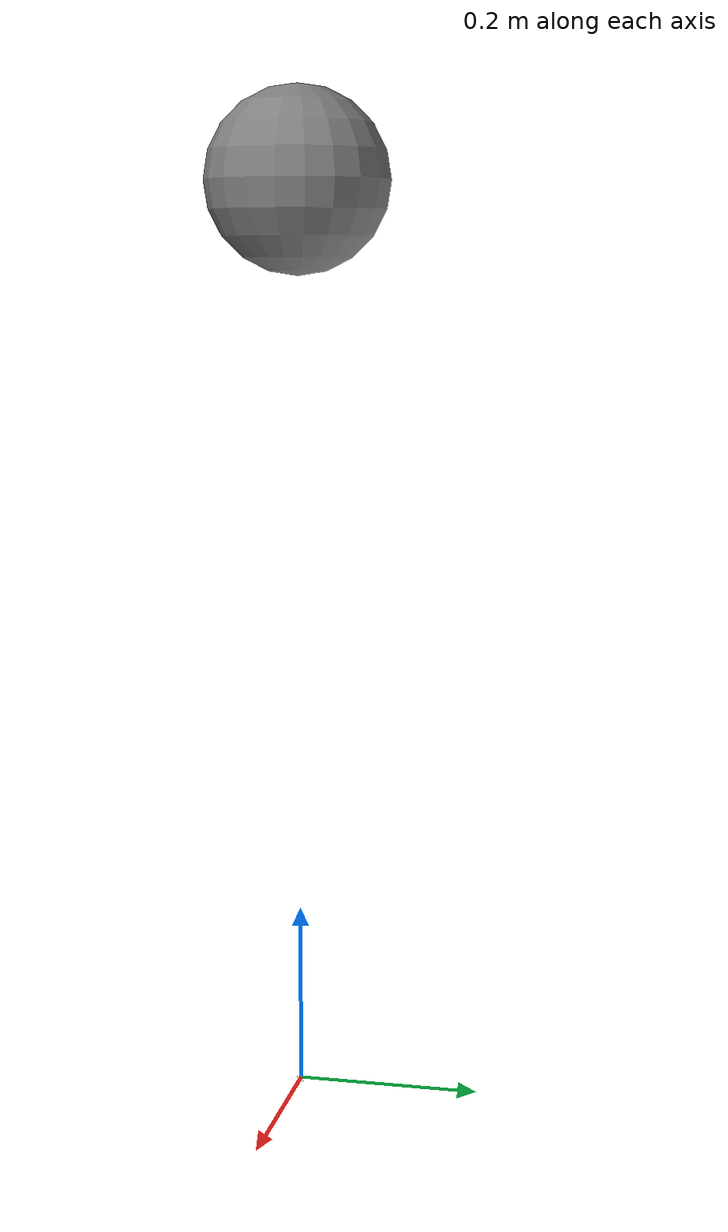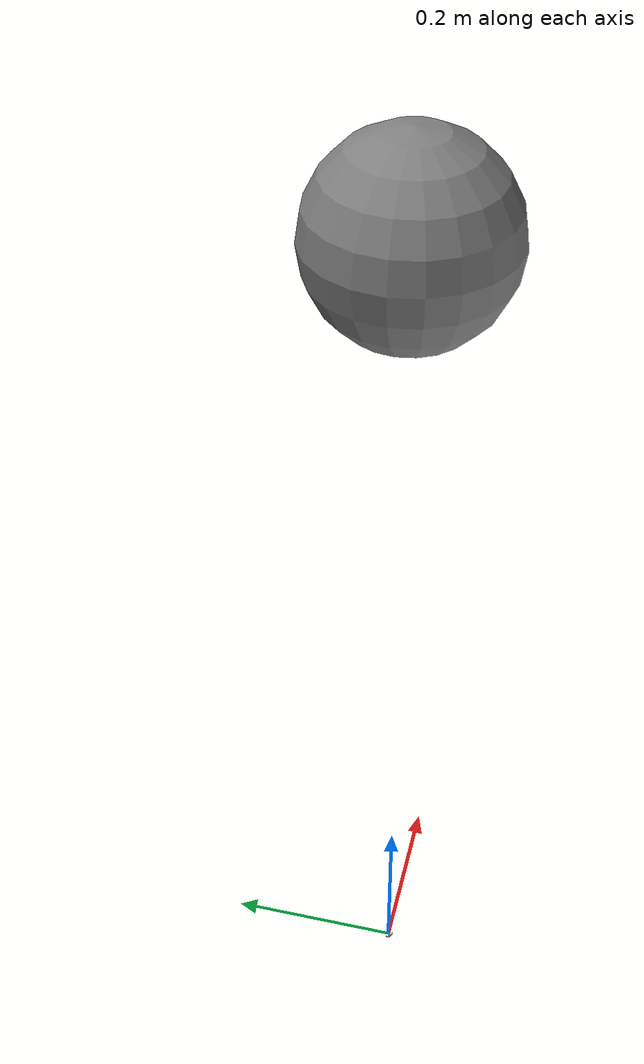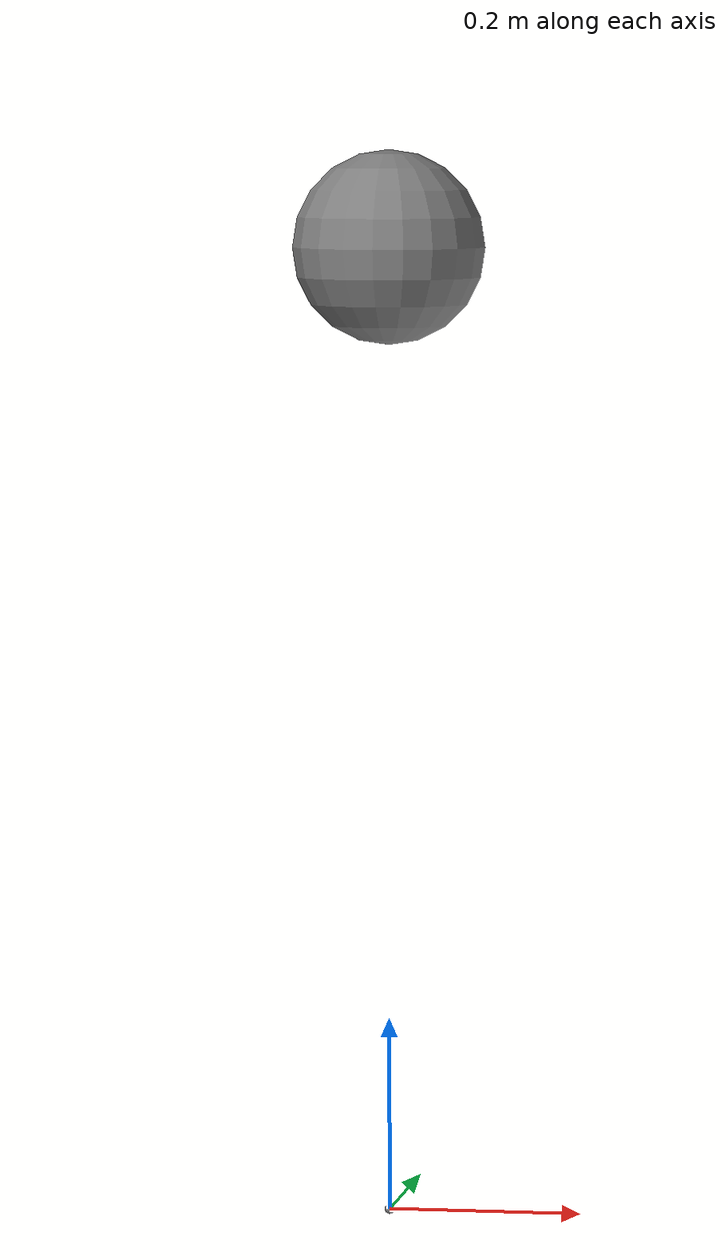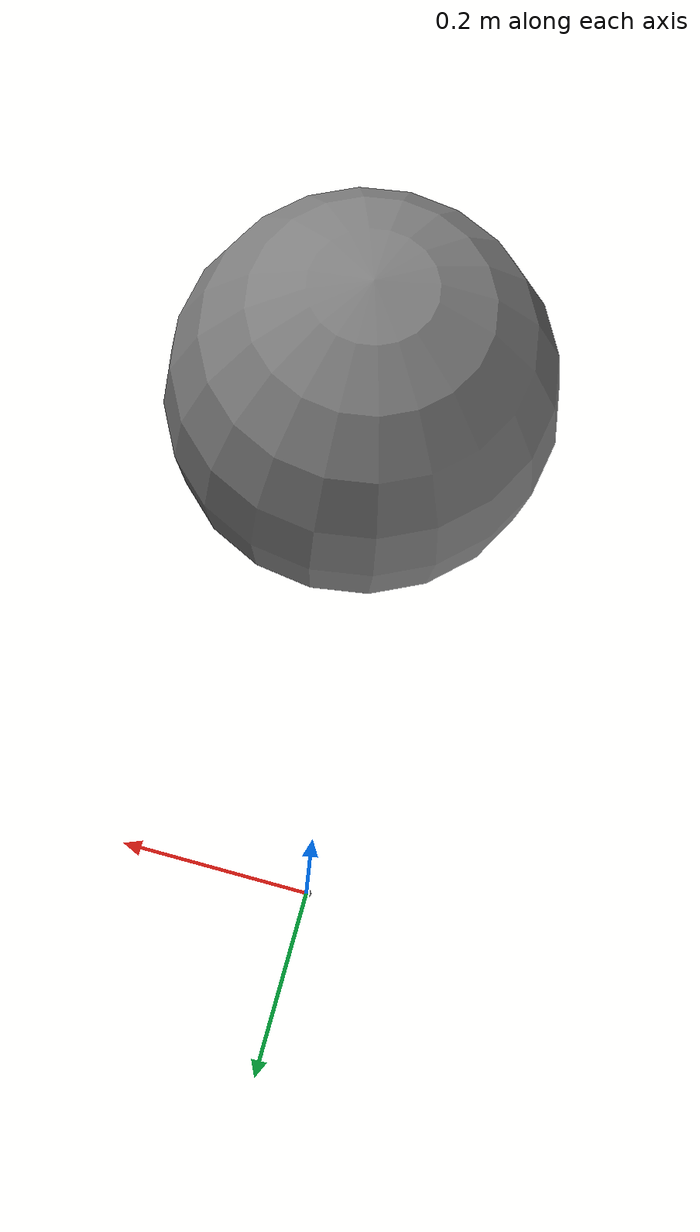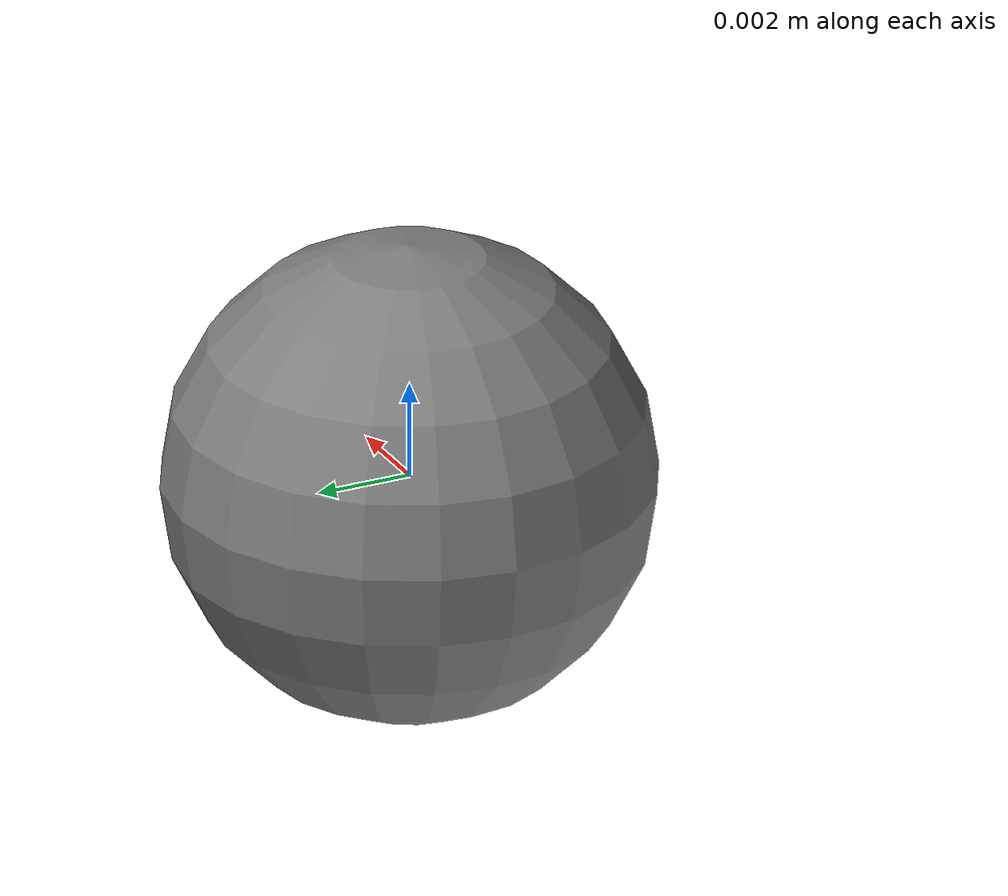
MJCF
<mujoco model="mode_b_rot_len">
            <worldbody>
                <body name="b1" pos="0 0 1">
                    <joint name="j1" type="hinge" axis="1 0 0"/>
                    <geom type="sphere" size="0.1" mass="1.0"/>
                    <site name="ee" pos="0 0 0"/>
                </body>
                <site name="target" pos="0 0 0"/>
            </worldbody>
            <actuator>
                <general name="a1" site="ee" refsite="target" gear="0 0 0 1 0 0"/>
            </actuator>
        </mujoco>
